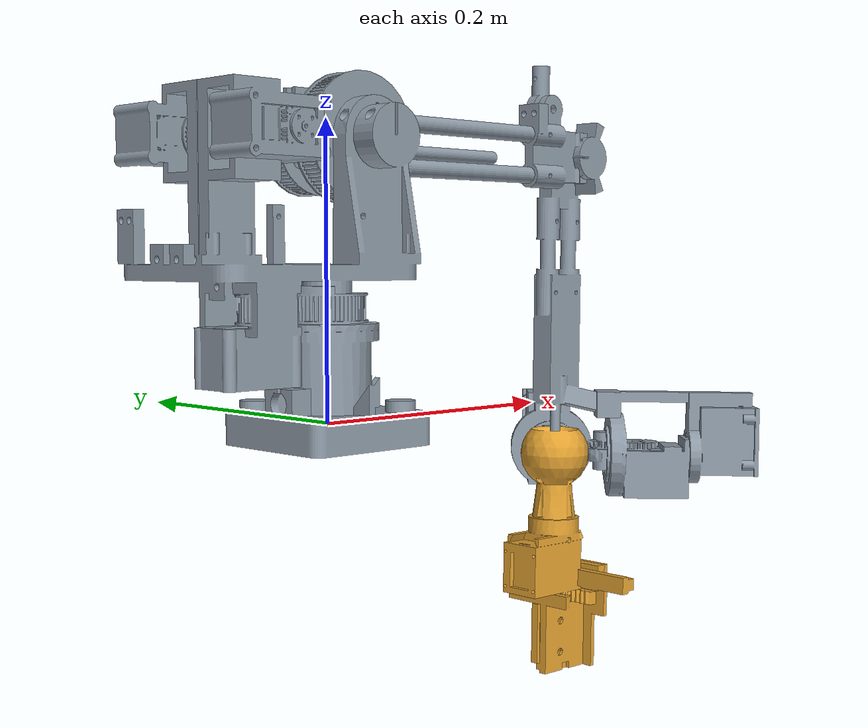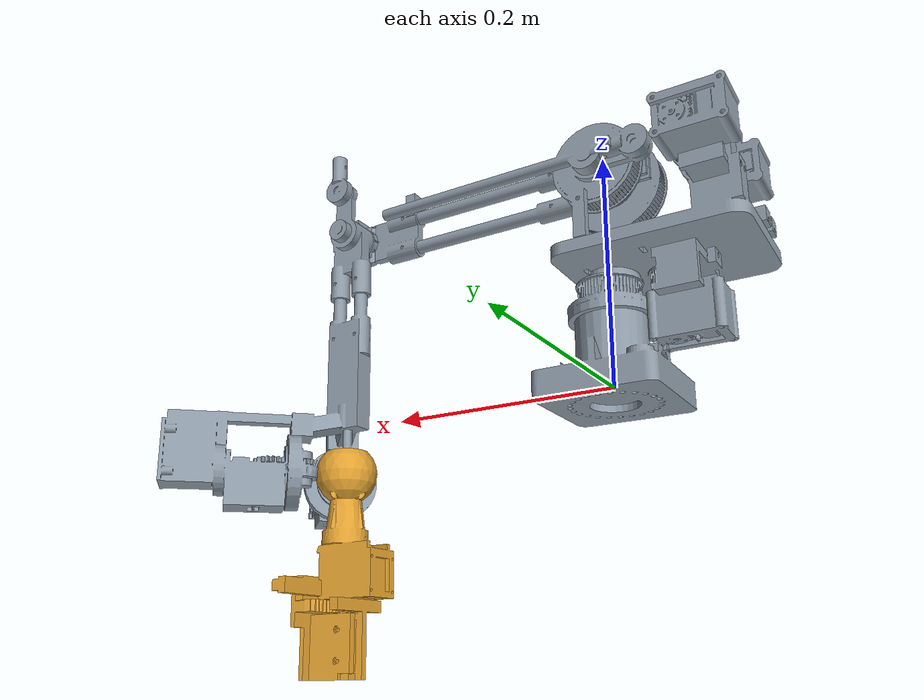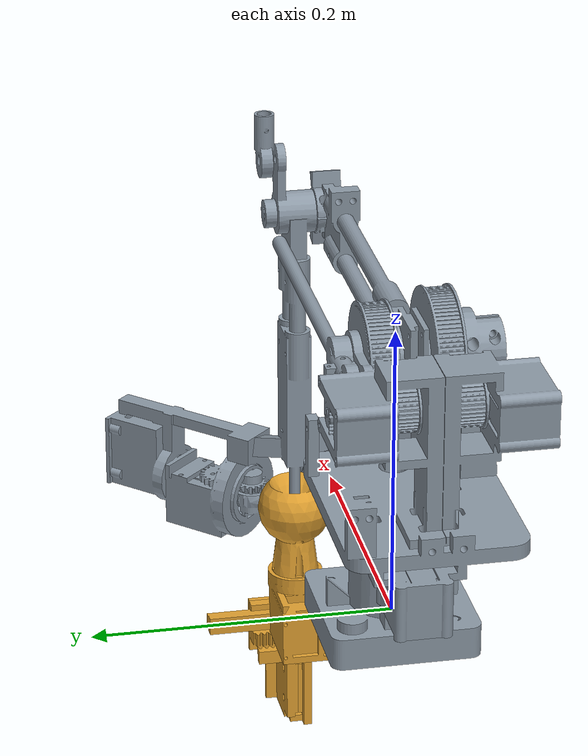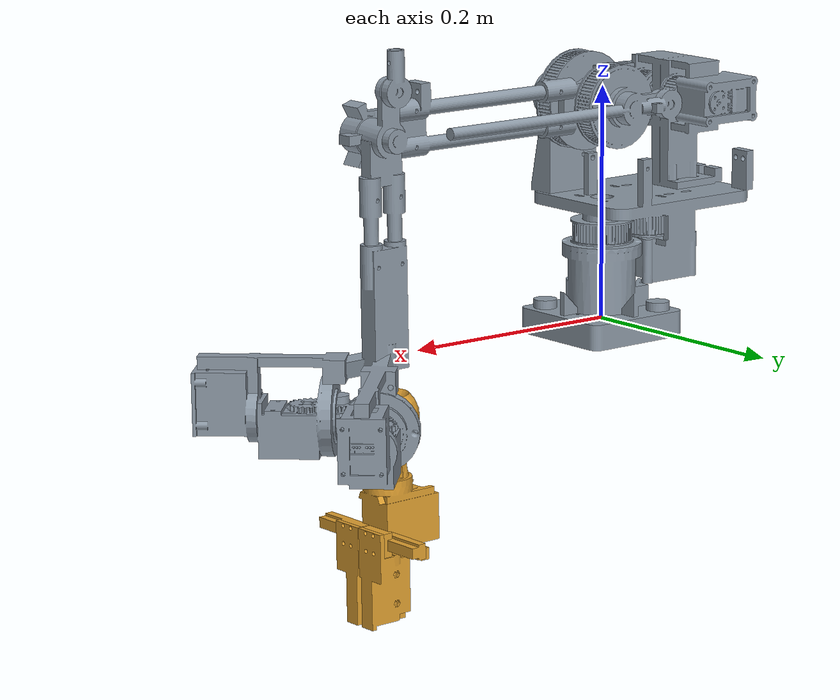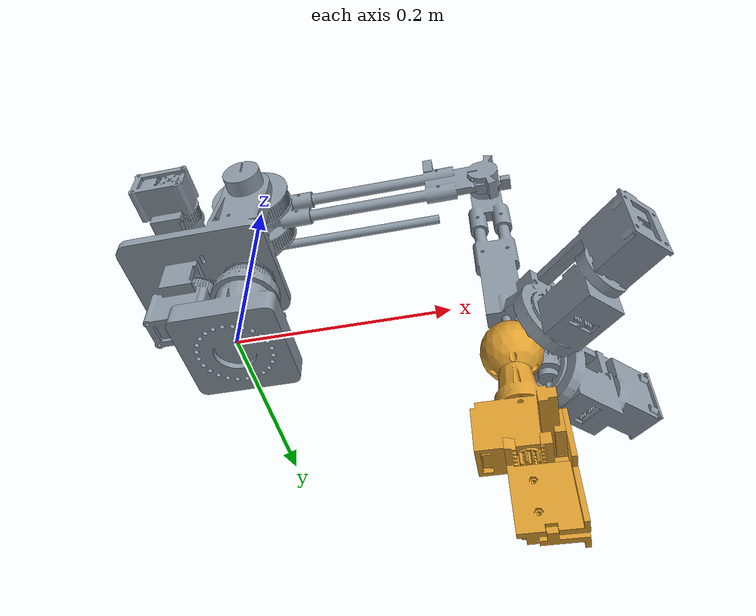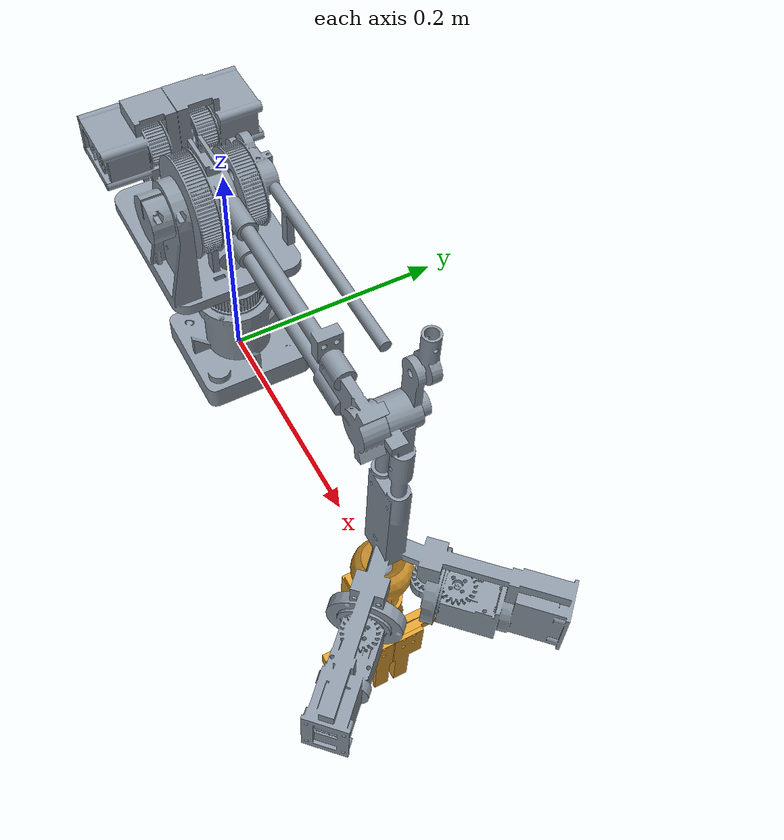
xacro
<?xml version="1.0"?>
<!-- GENERATED by cad/build.py --software from params.yaml. Do not edit. -->
<robot xmlns:xacro="http://www.ros.org/wiki/xacro" name="wra1">
  <xacro:arg name="side" default="right"/>
  <!-- side only changes the base mounting (see launch); the arm is identical L/R -->
  <material name="grey"><color rgba="0.55 0.6 0.65 1"/></material>
  <material name="orange"><color rgba="0.88 0.63 0.19 1"/></material>
  <link name="base_link">
    <visual><geometry><mesh filename="package://wra_description/meshes/base_link.stl" scale="0.001 0.001 0.001"/></geometry><material name="grey"/></visual>
  </link>
  <link name="turntable">
    <visual><geometry><mesh filename="package://wra_description/meshes/turntable.stl" scale="0.001 0.001 0.001"/></geometry><material name="grey"/></visual>
  </link>
  <link name="upper_arm">
    <visual><geometry><mesh filename="package://wra_description/meshes/upper_arm.stl" scale="0.001 0.001 0.001"/></geometry><material name="grey"/></visual>
  </link>
  <link name="forearm">
    <visual><geometry><mesh filename="package://wra_description/meshes/forearm.stl" scale="0.001 0.001 0.001"/></geometry><material name="grey"/></visual>
  </link>
  <joint name="j1" type="revolute">
    <parent link="base_link"/><child link="turntable"/><origin xyz="0.000000 0.000000 0.105000" rpy="0.000000 -0.000000 0.000000"/>
    <axis xyz="0 0 1"/>
    <limit lower="-1.83260" upper="1.83260" effort="3.0" velocity="1.0"/>
  </joint>
  <joint name="j2" type="revolute">
    <parent link="turntable"/><child link="upper_arm"/><origin xyz="0.000000 0.000000 0.080000" rpy="0.000000 -0.000000 0.000000"/>
    <axis xyz="0 -1 0"/>
    <limit lower="-0.52360" upper="1.74533" effort="3.0" velocity="1.0"/>
  </joint>
  <joint name="j3" type="revolute">
    <parent link="upper_arm"/><child link="forearm"/><origin xyz="0.250000 0.000000 0.000000" rpy="0.000000 -0.000000 0.000000"/>
    <axis xyz="0 -1 0"/>
    <limit lower="-2.44346" upper="-0.73304" effort="3.0" velocity="1.0"/>
  </joint>
  <link name="wrist_yaw_link"/>
  <link name="wrist_pitch_link"/>
  <link name="wrist_roll_link"/>
  <joint name="wrist_yaw" type="revolute">
    <parent link="forearm"/><child link="wrist_yaw_link"/><origin xyz="0.230000 0.016625 0.000000" rpy="0.000000 -0.000000 0.000000"/>
    <axis xyz="0 0 1"/>
    <limit lower="-0.57596" upper="0.57596" effort="3.0" velocity="3.0"/>
  </joint>
  <joint name="wrist_pitch" type="revolute">
    <parent link="wrist_yaw_link"/><child link="wrist_pitch_link"/><origin xyz="0 0 0" rpy="0 0 0"/>
    <axis xyz="0 -1 0"/>
    <limit lower="-0.57596" upper="0.57596" effort="3.0" velocity="3.0"/>
  </joint>
  <joint name="wrist_roll" type="revolute">
    <parent link="wrist_pitch_link"/><child link="wrist_roll_link"/><origin xyz="0 0 0" rpy="0 0 0"/>
    <axis xyz="1 0 0"/>
    <limit lower="-1.57080" upper="1.57080" effort="3.0" velocity="3.0"/>
  </joint>
  <link name="tool_flange">
    <visual><geometry><mesh filename="package://wra_description/meshes/tool_flange.stl" scale="0.001 0.001 0.001"/></geometry><material name="orange"/></visual>
  </link>
  <joint name="wrist_tool" type="fixed">
    <parent link="wrist_roll_link"/><child link="tool_flange"/><origin xyz="0.056000 0.000000 0.000000" rpy="0.000000 -0.000000 0.000000"/>
  </joint>
  <link name="jaw_a">
    <visual><geometry><mesh filename="package://wra_description/meshes/jaw_a.stl" scale="0.001 0.001 0.001"/></geometry><material name="orange"/></visual>
  </link>
  <link name="jaw_b">
    <visual><geometry><mesh filename="package://wra_description/meshes/jaw_b.stl" scale="0.001 0.001 0.001"/></geometry><material name="orange"/></visual>
  </link>
  <joint name="claw" type="prismatic">
    <parent link="tool_flange"/><child link="jaw_a"/><origin xyz="0 0 0" rpy="0 0 0"/>
    <axis xyz="0 1 0"/>
    <limit lower="0.00000" upper="0.03250" effort="3.0" velocity="0.05"/>
  </joint>
  <joint name="claw_b" type="prismatic">
    <parent link="tool_flange"/><child link="jaw_b"/><origin xyz="0 0 0" rpy="0 0 0"/>
    <axis xyz="0 -1 0"/>
    <limit lower="0.00000" upper="0.03250" effort="3.0" velocity="0.05"/>
    <mimic joint="claw" multiplier="1.0"/>
  </joint>
  <link name="tcp"/>
  <joint name="tcp_joint" type="fixed">
    <parent link="tool_flange"/><child link="tcp"/><origin xyz="0.088500 0 0" rpy="0 0 0"/>
  </joint>
</robot>
